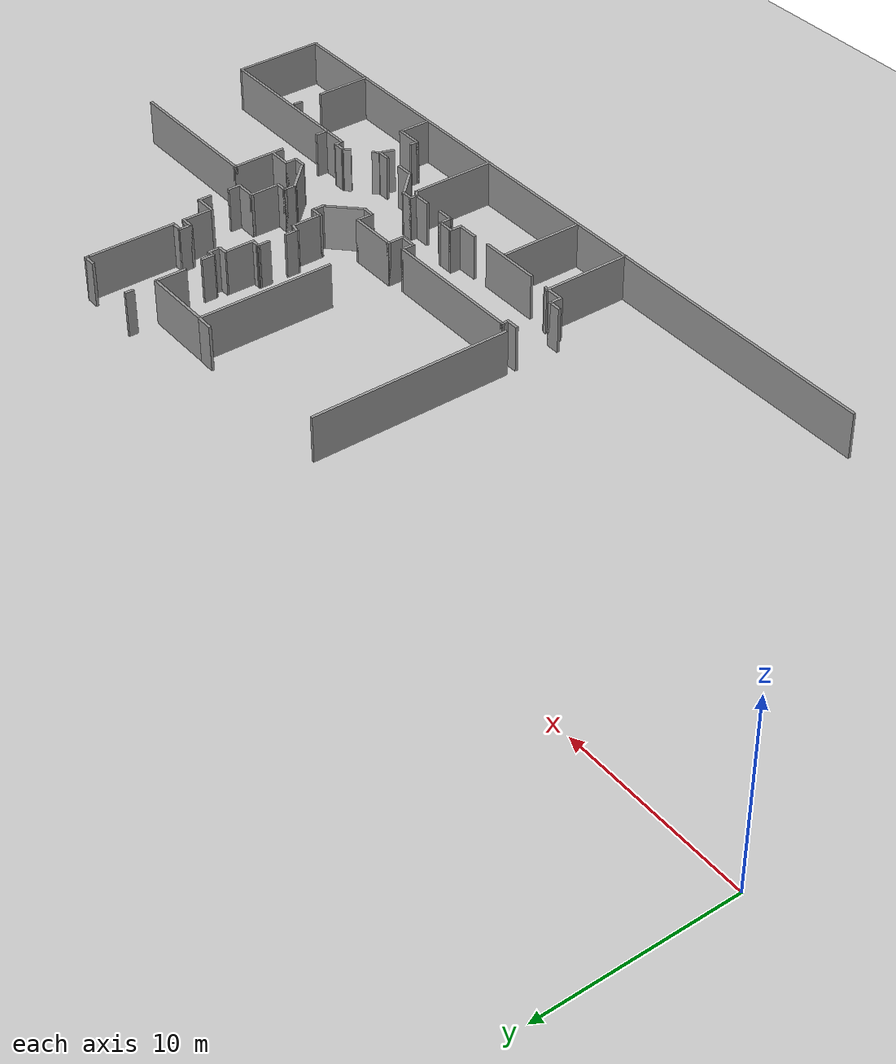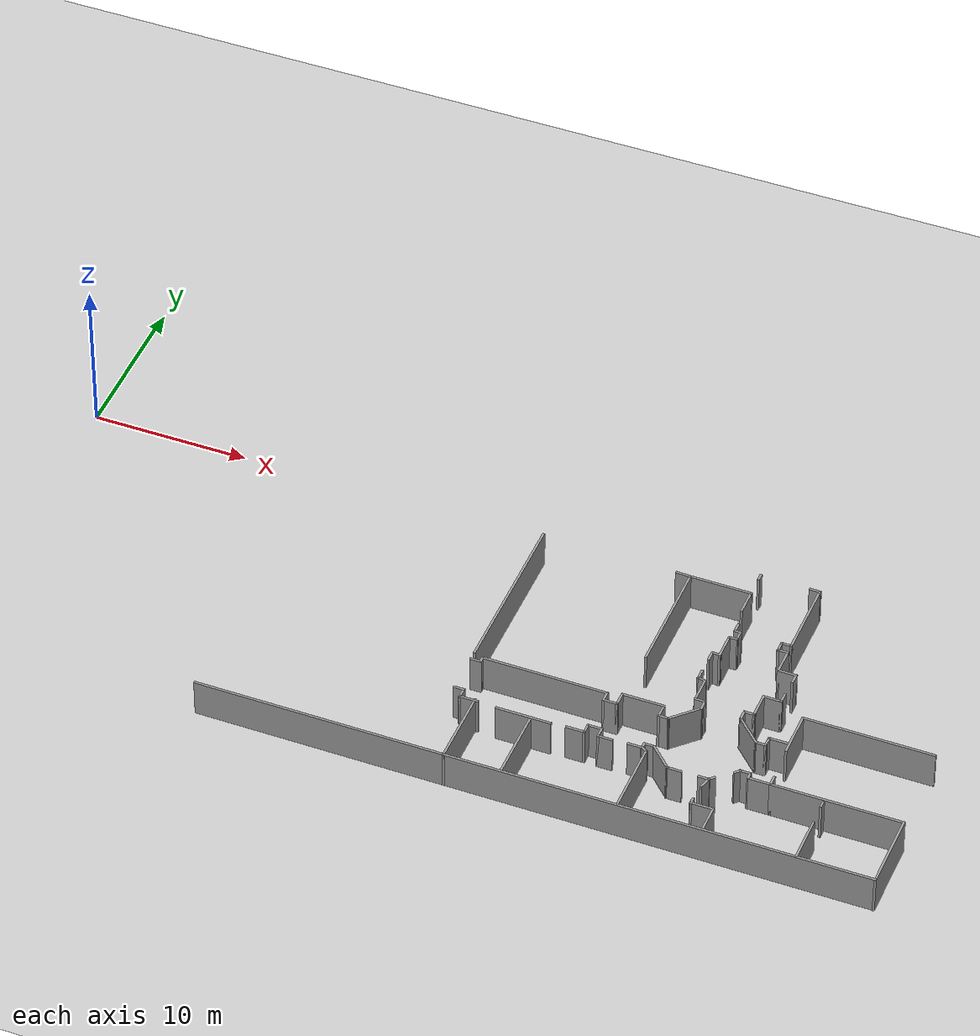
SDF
<sdf version="1.6">
 <world name="default">
  <model name="ground_plane">
   <static>1</static>
   <link name="link">
    <collision name="collision">
     <geometry><plane><normal>0 0 1</normal><size>200 100</size></plane></geometry>
     <surface><friction><ode><mu>100</mu><mu2>50</mu2></ode></friction></surface>
    </collision>
    <visual name="visual">
     <cast_shadows>0</cast_shadows>
     <geometry><plane><normal>0 0 1</normal><size>200 100</size></plane></geometry>
     <material>
      <script><uri>file://media/materials/scripts/gazebo.material</uri><name>Gazebo/Grey</name></script>
     </material>
    </visual>
   </link>
  </model>
  <model name="LuterFloorPlan">
   <pose>-8.27259 7.62647 0 0 -0 0</pose>
   <link name="Wall_1000">
    <collision name="Wall_1000_Collision">
     <geometry><box><size>5 0.15 2.5</size></box></geometry>
     <pose>0 0 1.25 0 -0 0</pose>
    </collision>
    <visual name="Wall_1000_Visual">
     <pose>0 0 1.25 0 -0 0</pose>
     <geometry><box><size>5 0.15 2.5</size></box></geometry>
     <material>
      <script><uri>file://media/materials/scripts/gazebo.material</uri><name>Gazebo/Grey</name></script>
      <ambient>1 1 1 1</ambient>
     </material>
    </visual>
    <pose>66.6595 -26.411 0 0 0 -1.5708</pose>
   </link>
   <link name="Wall_1003">
    <collision name="Wall_1003_Collision">
     <geometry><box><size>0.5 0.15 2.5</size></box></geometry>
     <pose>0 0 1.25 0 -0 0</pose>
    </collision>
    <visual name="Wall_1003_Visual">
     <pose>0 0 1.25 0 -0 0</pose>
     <geometry><box><size>0.5 0.15 2.5</size></box></geometry>
     <material>
      <script><uri>file://media/materials/scripts/gazebo.material</uri><name>Gazebo/Grey</name></script>
      <ambient>1 1 1 1</ambient>
     </material>
    </visual>
    <pose>61.8477 -24.3968 0 0 -0 1.5708</pose>
   </link>
   <link name="Wall_1005">
    <collision name="Wall_1005_Collision">
     <geometry><box><size>3 0.15 2.5</size></box></geometry>
     <pose>0 0 1.25 0 -0 0</pose>
    </collision>
    <visual name="Wall_1005_Visual">
     <pose>0 0 1.25 0 -0 0</pose>
     <geometry><box><size>3 0.15 2.5</size></box></geometry>
     <material>
      <script><uri>file://media/materials/scripts/gazebo.material</uri><name>Gazebo/Grey</name></script>
      <ambient>1 1 1 1</ambient>
     </material>
    </visual>
    <pose>61.8785 -27.343 0 0 -0 1.5708</pose>
   </link>
   <link name="Wall_1007">
    <collision name="Wall_1007_Collision">
     <geometry><box><size>0.75 0.15 2.5</size></box></geometry>
     <pose>0 0 1.25 0 -0 0</pose>
    </collision>
    <visual name="Wall_1007_Visual">
     <pose>0 0 1.25 0 -0 0</pose>
     <geometry><box><size>0.75 0.15 2.5</size></box></geometry>
     <material>
      <script><uri>file://media/materials/scripts/gazebo.material</uri><name>Gazebo/Grey</name></script>
      <ambient>1 1 1 1</ambient>
     </material>
    </visual>
    <pose>51.6413 -17.1025 0 0 0 -1.5708</pose>
   </link>
   <link name="Wall_1008">
    <collision name="Wall_1008_Collision">
     <geometry><box><size>0.619398 0.15 2.5</size></box></geometry>
     <pose>0 0 1.25 0 -0 0</pose>
    </collision>
    <visual name="Wall_1008_Visual">
     <pose>0 0 1.25 0 -0 0</pose>
     <geometry><box><size>0.619398 0.15 2.5</size></box></geometry>
     <material>
      <script><uri>file://media/materials/scripts/gazebo.material</uri><name>Gazebo/Grey</name></script>
      <ambient>1 1 1 1</ambient>
     </material>
    </visual>
    <pose>51.8689 -17.46 0 0 0 -0.24752</pose>
   </link>
   <link name="Wall_1010">
    <collision name="Wall_1010_Collision">
     <geometry><box><size>0.75 0.15 2.5</size></box></geometry>
     <pose>0 0 1.25 0 -0 0</pose>
    </collision>
    <visual name="Wall_1010_Visual">
     <pose>0 0 1.25 0 -0 0</pose>
     <geometry><box><size>0.75 0.15 2.5</size></box></geometry>
     <material>
      <script><uri>file://media/materials/scripts/gazebo.material</uri><name>Gazebo/Grey</name></script>
      <ambient>1 1 1 1</ambient>
     </material>
    </visual>
    <pose>51.6589 -15.4471 0 0 -0 1.5708</pose>
   </link>
   <link name="Wall_1011">
    <collision name="Wall_1011_Collision">
     <geometry><box><size>0.624432 0.15 2.5</size></box></geometry>
     <pose>0 0 1.25 0 -0 0</pose>
    </collision>
    <visual name="Wall_1011_Visual">
     <pose>0 0 1.25 0 -0 0</pose>
     <geometry><box><size>0.624432 0.15 2.5</size></box></geometry>
     <material>
      <script><uri>file://media/materials/scripts/gazebo.material</uri><name>Gazebo/Grey</name></script>
      <ambient>1 1 1 1</ambient>
     </material>
    </visual>
    <pose>51.8955 -15.1559 0 0 0 -0.03716</pose>
   </link>
   <link name="Wall_1012">
    <collision name="Wall_1012_Collision">
     <geometry><box><size>1.75 0.15 2.5</size></box></geometry>
     <pose>0 0 1.25 0 -0 0</pose>
    </collision>
    <visual name="Wall_1012_Visual">
     <pose>0 0 1.25 0 -0 0</pose>
     <geometry><box><size>1.75 0.15 2.5</size></box></geometry>
     <material>
      <script><uri>file://media/materials/scripts/gazebo.material</uri><name>Gazebo/Grey</name></script>
      <ambient>1 1 1 1</ambient>
     </material>
    </visual>
    <pose>52.132 -14.3823 0 0 -0 1.5708</pose>
   </link>
   <link name="Wall_1013">
    <collision name="Wall_1013_Collision">
     <geometry><box><size>0.62817 0.15 2.5</size></box></geometry>
     <pose>0 0 1.25 0 -0 0</pose>
    </collision>
    <visual name="Wall_1013_Visual">
     <pose>0 0 1.25 0 -0 0</pose>
     <geometry><box><size>0.62817 0.15 2.5</size></box></geometry>
     <material>
      <script><uri>file://media/materials/scripts/gazebo.material</uri><name>Gazebo/Grey</name></script>
      <ambient>1 1 1 1</ambient>
     </material>
    </visual>
    <pose>52.3705 -13.5559 0 0 -0 0.036868</pose>
   </link>
   <link name="Wall_1014">
    <collision name="Wall_1014_Collision">
     <geometry><box><size>0.75 0.15 2.5</size></box></geometry>
     <pose>0 0 1.25 0 -0 0</pose>
    </collision>
    <visual name="Wall_1014_Visual">
     <pose>0 0 1.25 0 -0 0</pose>
     <geometry><box><size>0.75 0.15 2.5</size></box></geometry>
     <material>
      <script><uri>file://media/materials/scripts/gazebo.material</uri><name>Gazebo/Grey</name></script>
      <ambient>1 1 1 1</ambient>
     </material>
    </visual>
    <pose>52.6089 -13.2471 0 0 -0 1.5708</pose>
   </link>
   <link name="Wall_1015">
    <collision name="Wall_1015_Collision">
     <geometry><box><size>0.5 0.15 2.5</size></box></geometry>
     <pose>0 0 1.25 0 -0 0</pose>
    </collision>
    <visual name="Wall_1015_Visual">
     <pose>0 0 1.25 0 -0 0</pose>
     <geometry><box><size>0.5 0.15 2.5</size></box></geometry>
     <material>
      <script><uri>file://media/materials/scripts/gazebo.material</uri><name>Gazebo/Grey</name></script>
      <ambient>1 1 1 1</ambient>
     </material>
    </visual>
    <pose>52.4339 -12.9471 0 0 -0 3.14159</pose>
   </link>
   <link name="Wall_1016">
    <collision name="Wall_1016_Collision">
     <geometry><box><size>0.75 0.15 2.5</size></box></geometry>
     <pose>0 0 1.25 0 -0 0</pose>
    </collision>
    <visual name="Wall_1016_Visual">
     <pose>0 0 1.25 0 -0 0</pose>
     <geometry><box><size>0.75 0.15 2.5</size></box></geometry>
     <material>
      <script><uri>file://media/materials/scripts/gazebo.material</uri><name>Gazebo/Grey</name></script>
      <ambient>1 1 1 1</ambient>
     </material>
    </visual>
    <pose>52.2589 -12.6471 0 0 -0 1.5708</pose>
   </link>
   <link name="Wall_1018">
    <collision name="Wall_1018_Collision">
     <geometry><box><size>7.5 0.15 2.5</size></box></geometry>
     <pose>0 0 1.25 0 -0 0</pose>
    </collision>
    <visual name="Wall_1018_Visual">
     <pose>0 0 1.25 0 -0 0</pose>
     <geometry><box><size>7.5 0.15 2.5</size></box></geometry>
     <material>
      <script><uri>file://media/materials/scripts/gazebo.material</uri><name>Gazebo/Grey</name></script>
      <ambient>1 1 1 1</ambient>
     </material>
    </visual>
    <pose>48.1762 -13.2682 0 0 -0 1.5708</pose>
   </link>
   <link name="Wall_1019">
    <collision name="Wall_1019_Collision">
     <geometry><box><size>4 0.15 2.5</size></box></geometry>
     <pose>0 0 1.25 0 -0 0</pose>
    </collision>
    <visual name="Wall_1019_Visual">
     <pose>0 0 1.25 0 -0 0</pose>
     <geometry><box><size>4 0.15 2.5</size></box></geometry>
     <material>
      <script><uri>file://media/materials/scripts/gazebo.material</uri><name>Gazebo/Grey</name></script>
      <ambient>1 1 1 1</ambient>
     </material>
    </visual>
    <pose>50.1012 -9.59318 0 0 -0 0</pose>
   </link>
   <link name="Wall_1020">
    <collision name="Wall_1020_Collision">
     <geometry><box><size>1.75 0.15 2.5</size></box></geometry>
     <pose>0 0 1.25 0 -0 0</pose>
    </collision>
    <visual name="Wall_1020_Visual">
     <pose>0 0 1.25 0 -0 0</pose>
     <geometry><box><size>1.75 0.15 2.5</size></box></geometry>
     <material>
      <script><uri>file://media/materials/scripts/gazebo.material</uri><name>Gazebo/Grey</name></script>
      <ambient>1 1 1 1</ambient>
     </material>
    </visual>
    <pose>52.0262 -10.3932 0 0 0 -1.5708</pose>
   </link>
   <link name="Wall_1022">
    <collision name="Wall_1022_Collision">
     <geometry><box><size>1.02593 0.15 2.5</size></box></geometry>
     <pose>0 0 1.25 0 -0 0</pose>
    </collision>
    <visual name="Wall_1022_Visual">
     <pose>0 0 1.25 0 -0 0</pose>
     <geometry><box><size>1.02593 0.15 2.5</size></box></geometry>
     <material>
      <script><uri>file://media/materials/scripts/gazebo.material</uri><name>Gazebo/Grey</name></script>
      <ambient>1 1 1 1</ambient>
     </material>
    </visual>
    <pose>47.7385 -9.57923 0 0 -0 3.10974</pose>
   </link>
   <link name="Wall_1035">
    <collision name="Wall_1035_Collision">
     <geometry><box><size>3 0.15 2.5</size></box></geometry>
     <pose>0 0 1.25 0 -0 0</pose>
    </collision>
    <visual name="Wall_1035_Visual">
     <pose>0 0 1.25 0 -0 0</pose>
     <geometry><box><size>3 0.15 2.5</size></box></geometry>
     <material>
      <script><uri>file://media/materials/scripts/gazebo.material</uri><name>Gazebo/Grey</name></script>
      <ambient>1 1 1 1</ambient>
     </material>
    </visual>
    <pose>58.4478 -19.6647 0 0 -0 1.5708</pose>
   </link>
   <link name="Wall_1036">
    <collision name="Wall_1036_Collision">
     <geometry><box><size>8.25 0.15 2.5</size></box></geometry>
     <pose>0 0 1.25 0 -0 0</pose>
    </collision>
    <visual name="Wall_1036_Visual">
     <pose>0 0 1.25 0 -0 0</pose>
     <geometry><box><size>8.25 0.15 2.5</size></box></geometry>
     <material>
      <script><uri>file://media/materials/scripts/gazebo.material</uri><name>Gazebo/Grey</name></script>
      <ambient>1 1 1 1</ambient>
     </material>
    </visual>
    <pose>62.4978 -18.2397 0 0 -0 0</pose>
   </link>
   <link name="Wall_1038">
    <collision name="Wall_1038_Collision">
     <geometry><box><size>0.75 0.15 2.5</size></box></geometry>
     <pose>0 0 1.25 0 -0 0</pose>
    </collision>
    <visual name="Wall_1038_Visual">
     <pose>0 0 1.25 0 -0 0</pose>
     <geometry><box><size>0.75 0.15 2.5</size></box></geometry>
     <material>
      <script><uri>file://media/materials/scripts/gazebo.material</uri><name>Gazebo/Grey</name></script>
      <ambient>1 1 1 1</ambient>
     </material>
    </visual>
    <pose>56.816 -17.1362 0 0 0 -1.5708</pose>
   </link>
   <link name="Wall_1039">
    <collision name="Wall_1039_Collision">
     <geometry><box><size>1.25 0.15 2.5</size></box></geometry>
     <pose>0 0 1.25 0 -0 0</pose>
    </collision>
    <visual name="Wall_1039_Visual">
     <pose>0 0 1.25 0 -0 0</pose>
     <geometry><box><size>1.25 0.15 2.5</size></box></geometry>
     <material>
      <script><uri>file://media/materials/scripts/gazebo.material</uri><name>Gazebo/Grey</name></script>
      <ambient>1 1 1 1</ambient>
     </material>
    </visual>
    <pose>56.266 -17.4362 0 0 -0 3.14159</pose>
   </link>
   <link name="Wall_1040">
    <collision name="Wall_1040_Collision">
     <geometry><box><size>1.75 0.15 2.5</size></box></geometry>
     <pose>0 0 1.25 0 -0 0</pose>
    </collision>
    <visual name="Wall_1040_Visual">
     <pose>0 0 1.25 0 -0 0</pose>
     <geometry><box><size>1.75 0.15 2.5</size></box></geometry>
     <material>
      <script><uri>file://media/materials/scripts/gazebo.material</uri><name>Gazebo/Grey</name></script>
      <ambient>1 1 1 1</ambient>
     </material>
    </visual>
    <pose>55.716 -18.2362 0 0 0 -1.5708</pose>
   </link>
   <link name="Wall_1041">
    <collision name="Wall_1041_Collision">
     <geometry><box><size>0.75 0.15 2.5</size></box></geometry>
     <pose>0 0 1.25 0 -0 0</pose>
    </collision>
    <visual name="Wall_1041_Visual">
     <pose>0 0 1.25 0 -0 0</pose>
     <geometry><box><size>0.75 0.15 2.5</size></box></geometry>
     <material>
      <script><uri>file://media/materials/scripts/gazebo.material</uri><name>Gazebo/Grey</name></script>
      <ambient>1 1 1 1</ambient>
     </material>
    </visual>
    <pose>55.416 -19.0362 0 0 -0 3.14159</pose>
   </link>
   <link name="Wall_1042">
    <collision name="Wall_1042_Collision">
     <geometry><box><size>0.75 0.15 2.5</size></box></geometry>
     <pose>0 0 1.25 0 -0 0</pose>
    </collision>
    <visual name="Wall_1042_Visual">
     <pose>0 0 1.25 0 -0 0</pose>
     <geometry><box><size>0.75 0.15 2.5</size></box></geometry>
     <material>
      <script><uri>file://media/materials/scripts/gazebo.material</uri><name>Gazebo/Grey</name></script>
      <ambient>1 1 1 1</ambient>
     </material>
    </visual>
    <pose>55.116 -19.3362 0 0 0 -1.5708</pose>
   </link>
   <link name="Wall_1043">
    <collision name="Wall_1043_Collision">
     <geometry><box><size>2.25 0.15 2.5</size></box></geometry>
     <pose>0 0 1.25 0 -0 0</pose>
    </collision>
    <visual name="Wall_1043_Visual">
     <pose>0 0 1.25 0 -0 0</pose>
     <geometry><box><size>2.25 0.15 2.5</size></box></geometry>
     <material>
      <script><uri>file://media/materials/scripts/gazebo.material</uri><name>Gazebo/Grey</name></script>
      <ambient>1 1 1 1</ambient>
     </material>
    </visual>
    <pose>55.8585 -20.3787 0 0 0 -0.785398</pose>
   </link>
   <link name="Wall_1044">
    <collision name="Wall_1044_Collision">
     <geometry><box><size>0.75 0.15 2.5</size></box></geometry>
     <pose>0 0 1.25 0 -0 0</pose>
    </collision>
    <visual name="Wall_1044_Visual">
     <pose>0 0 1.25 0 -0 0</pose>
     <geometry><box><size>0.75 0.15 2.5</size></box></geometry>
     <material>
      <script><uri>file://media/materials/scripts/gazebo.material</uri><name>Gazebo/Grey</name></script>
      <ambient>1 1 1 1</ambient>
     </material>
    </visual>
    <pose>56.9009 -21.1212 0 0 -0 0</pose>
   </link>
   <link name="Wall_1045">
    <collision name="Wall_1045_Collision">
     <geometry><box><size>0.75 0.15 2.5</size></box></geometry>
     <pose>0 0 1.25 0 -0 0</pose>
    </collision>
    <visual name="Wall_1045_Visual">
     <pose>0 0 1.25 0 -0 0</pose>
     <geometry><box><size>0.75 0.15 2.5</size></box></geometry>
     <material>
      <script><uri>file://media/materials/scripts/gazebo.material</uri><name>Gazebo/Grey</name></script>
      <ambient>1 1 1 1</ambient>
     </material>
    </visual>
    <pose>57.2009 -20.8212 0 0 -0 1.5708</pose>
   </link>
   <link name="Wall_1046">
    <collision name="Wall_1046_Collision">
     <geometry><box><size>1.25 0.15 2.5</size></box></geometry>
     <pose>0 0 1.25 0 -0 0</pose>
    </collision>
    <visual name="Wall_1046_Visual">
     <pose>0 0 1.25 0 -0 0</pose>
     <geometry><box><size>1.25 0.15 2.5</size></box></geometry>
     <material>
      <script><uri>file://media/materials/scripts/gazebo.material</uri><name>Gazebo/Grey</name></script>
      <ambient>1 1 1 1</ambient>
     </material>
    </visual>
    <pose>57.7509 -20.5212 0 0 -0 0</pose>
   </link>
   <link name="Wall_1048">
    <collision name="Wall_1048_Collision">
     <geometry><box><size>0.75 0.15 2.5</size></box></geometry>
     <pose>0 0 1.25 0 -0 0</pose>
    </collision>
    <visual name="Wall_1048_Visual">
     <pose>0 0 1.25 0 -0 0</pose>
     <geometry><box><size>0.75 0.15 2.5</size></box></geometry>
     <material>
      <script><uri>file://media/materials/scripts/gazebo.material</uri><name>Gazebo/Grey</name></script>
      <ambient>1 1 1 1</ambient>
     </material>
    </visual>
    <pose>56.8695 -15.3859 0 0 -0 1.5708</pose>
   </link>
   <link name="Wall_1049">
    <collision name="Wall_1049_Collision">
     <geometry><box><size>1.25 0.15 2.5</size></box></geometry>
     <pose>0 0 1.25 0 -0 0</pose>
    </collision>
    <visual name="Wall_1049_Visual">
     <pose>0 0 1.25 0 -0 0</pose>
     <geometry><box><size>1.25 0.15 2.5</size></box></geometry>
     <material>
      <script><uri>file://media/materials/scripts/gazebo.material</uri><name>Gazebo/Grey</name></script>
      <ambient>1 1 1 1</ambient>
     </material>
    </visual>
    <pose>56.3195 -15.0859 0 0 -0 3.14159</pose>
   </link>
   <link name="Wall_1050">
    <collision name="Wall_1050_Collision">
     <geometry><box><size>1.75 0.15 2.5</size></box></geometry>
     <pose>0 0 1.25 0 -0 0</pose>
    </collision>
    <visual name="Wall_1050_Visual">
     <pose>0 0 1.25 0 -0 0</pose>
     <geometry><box><size>1.75 0.15 2.5</size></box></geometry>
     <material>
      <script><uri>file://media/materials/scripts/gazebo.material</uri><name>Gazebo/Grey</name></script>
      <ambient>1 1 1 1</ambient>
     </material>
    </visual>
    <pose>55.7695 -14.2859 0 0 -0 1.5708</pose>
   </link>
   <link name="Wall_1051">
    <collision name="Wall_1051_Collision">
     <geometry><box><size>0.75 0.15 2.5</size></box></geometry>
     <pose>0 0 1.25 0 -0 0</pose>
    </collision>
    <visual name="Wall_1051_Visual">
     <pose>0 0 1.25 0 -0 0</pose>
     <geometry><box><size>0.75 0.15 2.5</size></box></geometry>
     <material>
      <script><uri>file://media/materials/scripts/gazebo.material</uri><name>Gazebo/Grey</name></script>
      <ambient>1 1 1 1</ambient>
     </material>
    </visual>
    <pose>55.4695 -13.4859 0 0 -0 3.14159</pose>
   </link>
   <link name="Wall_1052">
    <collision name="Wall_1052_Collision">
     <geometry><box><size>0.75 0.15 2.5</size></box></geometry>
     <pose>0 0 1.25 0 -0 0</pose>
    </collision>
    <visual name="Wall_1052_Visual">
     <pose>0 0 1.25 0 -0 0</pose>
     <geometry><box><size>0.75 0.15 2.5</size></box></geometry>
     <material>
      <script><uri>file://media/materials/scripts/gazebo.material</uri><name>Gazebo/Grey</name></script>
      <ambient>1 1 1 1</ambient>
     </material>
    </visual>
    <pose>55.1695 -13.1859 0 0 -0 1.5708</pose>
   </link>
   <link name="Wall_1053">
    <collision name="Wall_1053_Collision">
     <geometry><box><size>0.75 0.15 2.5</size></box></geometry>
     <pose>0 0 1.25 0 -0 0</pose>
    </collision>
    <visual name="Wall_1053_Visual">
     <pose>0 0 1.25 0 -0 0</pose>
     <geometry><box><size>0.75 0.15 2.5</size></box></geometry>
     <material>
      <script><uri>file://media/materials/scripts/gazebo.material</uri><name>Gazebo/Grey</name></script>
      <ambient>1 1 1 1</ambient>
     </material>
    </visual>
    <pose>55.4695 -12.8859 0 0 -0 0</pose>
   </link>
   <link name="Wall_1054">
    <collision name="Wall_1054_Collision">
     <geometry><box><size>5 0.15 2.5</size></box></geometry>
     <pose>0 0 1.25 0 -0 0</pose>
    </collision>
    <visual name="Wall_1054_Visual">
     <pose>0 0 1.25 0 -0 0</pose>
     <geometry><box><size>5 0.15 2.5</size></box></geometry>
     <material>
      <script><uri>file://media/materials/scripts/gazebo.material</uri><name>Gazebo/Grey</name></script>
      <ambient>1 1 1 1</ambient>
     </material>
    </visual>
    <pose>55.7695 -10.4609 0 0 -0 1.5708</pose>
   </link>
   <link name="Wall_1055">
    <collision name="Wall_1055_Collision">
     <geometry><box><size>0.25 0.15 2.5</size></box></geometry>
     <pose>0 0 1.25 0 -0 0</pose>
    </collision>
    <visual name="Wall_1055_Visual">
     <pose>0 0 1.25 0 -0 0</pose>
     <geometry><box><size>0.25 0.15 2.5</size></box></geometry>
     <material>
      <script><uri>file://media/materials/scripts/gazebo.material</uri><name>Gazebo/Grey</name></script>
      <ambient>1 1 1 1</ambient>
     </material>
    </visual>
    <pose>55.7695 -7.98593 0 0 -0 1.5708</pose>
   </link>
   <link name="Wall_1056">
    <collision name="Wall_1056_Collision">
     <geometry><box><size>0.75 0.15 2.5</size></box></geometry>
     <pose>0 0 1.25 0 -0 0</pose>
    </collision>
    <visual name="Wall_1056_Visual">
     <pose>0 0 1.25 0 -0 0</pose>
     <geometry><box><size>0.75 0.15 2.5</size></box></geometry>
     <material>
      <script><uri>file://media/materials/scripts/gazebo.material</uri><name>Gazebo/Grey</name></script>
      <ambient>1 1 1 1</ambient>
     </material>
    </visual>
    <pose>55.4695 -7.93593 0 0 -0 3.14159</pose>
   </link>
   <link name="Wall_1061">
    <collision name="Wall_1061_Collision">
     <geometry><box><size>0.5 0.15 2.5</size></box></geometry>
     <pose>0 0 1.25 0 -0 0</pose>
    </collision>
    <visual name="Wall_1061_Visual">
     <pose>0 0 1.25 0 -0 0</pose>
     <geometry><box><size>0.5 0.15 2.5</size></box></geometry>
     <material>
      <script><uri>file://media/materials/scripts/gazebo.material</uri><name>Gazebo/Grey</name></script>
      <ambient>1 1 1 1</ambient>
     </material>
    </visual>
    <pose>52.0275 -8.10084 0 0 -0 1.5708</pose>
   </link>
   <link name="Wall_899">
    <collision name="Wall_899_Collision">
     <geometry><box><size>42.25 0.15 2.5</size></box></geometry>
     <pose>0 0 1.25 0 -0 0</pose>
    </collision>
    <visual name="Wall_899_Visual">
     <pose>0 0 1.25 0 -0 0</pose>
     <geometry><box><size>42.25 0.15 2.5</size></box></geometry>
     <material>
      <script><uri>file://media/materials/scripts/gazebo.material</uri><name>Gazebo/Grey</name></script>
      <ambient>1 1 1 1</ambient>
     </material>
    </visual>
    <pose>45.5598 -28.8154 0 0 -0 0</pose>
   </link>
   <link name="Wall_937">
    <collision name="Wall_937_Collision">
     <geometry><box><size>0.75 0.15 2.5</size></box></geometry>
     <pose>0 0 1.25 0 -0 0</pose>
    </collision>
    <visual name="Wall_937_Visual">
     <pose>0 0 1.25 0 -0 0</pose>
     <geometry><box><size>0.75 0.15 2.5</size></box></geometry>
     <material>
      <script><uri>file://media/materials/scripts/gazebo.material</uri><name>Gazebo/Grey</name></script>
      <ambient>1 1 1 1</ambient>
     </material>
    </visual>
    <pose>38.9894 -23.4706 0 0 -0 0</pose>
   </link>
   <link name="Wall_938">
    <collision name="Wall_938_Collision">
     <geometry><box><size>0.75 0.15 2.5</size></box></geometry>
     <pose>0 0 1.25 0 -0 0</pose>
    </collision>
    <visual name="Wall_938_Visual">
     <pose>0 0 1.25 0 -0 0</pose>
     <geometry><box><size>0.75 0.15 2.5</size></box></geometry>
     <material>
      <script><uri>file://media/materials/scripts/gazebo.material</uri><name>Gazebo/Grey</name></script>
      <ambient>1 1 1 1</ambient>
     </material>
    </visual>
    <pose>39.2894 -23.7706 0 0 0 -1.5708</pose>
   </link>
   <link name="Wall_939">
    <collision name="Wall_939_Collision">
     <geometry><box><size>1.25 0.15 2.5</size></box></geometry>
     <pose>0 0 1.25 0 -0 0</pose>
    </collision>
    <visual name="Wall_939_Visual">
     <pose>0 0 1.25 0 -0 0</pose>
     <geometry><box><size>1.25 0.15 2.5</size></box></geometry>
     <material>
      <script><uri>file://media/materials/scripts/gazebo.material</uri><name>Gazebo/Grey</name></script>
      <ambient>1 1 1 1</ambient>
     </material>
    </visual>
    <pose>39.8394 -24.0706 0 0 -0 0</pose>
   </link>
   <link name="Wall_941">
    <collision name="Wall_941_Collision">
     <geometry><box><size>5 0.15 2.5</size></box></geometry>
     <pose>0 0 1.25 0 -0 0</pose>
    </collision>
    <visual name="Wall_941_Visual">
     <pose>0 0 1.25 0 -0 0</pose>
     <geometry><box><size>5 0.15 2.5</size></box></geometry>
     <material>
      <script><uri>file://media/materials/scripts/gazebo.material</uri><name>Gazebo/Grey</name></script>
      <ambient>1 1 1 1</ambient>
     </material>
    </visual>
    <pose>40.2174 -26.407 0 0 -0 1.5708</pose>
   </link>
   <link name="Wall_944">
    <collision name="Wall_944_Collision">
     <geometry><box><size>11 0.15 2.5</size></box></geometry>
     <pose>0 0 1.25 0 -0 0</pose>
    </collision>
    <visual name="Wall_944_Visual">
     <pose>0 0 1.25 0 -0 0</pose>
     <geometry><box><size>11 0.15 2.5</size></box></geometry>
     <material>
      <script><uri>file://media/materials/scripts/gazebo.material</uri><name>Gazebo/Grey</name></script>
      <ambient>1 1 1 1</ambient>
     </material>
    </visual>
    <pose>38.7115 -14.9274 0 0 0 -1.5708</pose>
   </link>
   <link name="Wall_948">
    <collision name="Wall_948_Collision">
     <geometry><box><size>0.75 0.15 2.5</size></box></geometry>
     <pose>0 0 1.25 0 -0 0</pose>
    </collision>
    <visual name="Wall_948_Visual">
     <pose>0 0 1.25 0 -0 0</pose>
     <geometry><box><size>0.75 0.15 2.5</size></box></geometry>
     <material>
      <script><uri>file://media/materials/scripts/gazebo.material</uri><name>Gazebo/Grey</name></script>
      <ambient>1 1 1 1</ambient>
     </material>
    </visual>
    <pose>39.0115 -20.9524 0 0 -0 0</pose>
   </link>
   <link name="Wall_949">
    <collision name="Wall_949_Collision">
     <geometry><box><size>0.5 0.15 2.5</size></box></geometry>
     <pose>0 0 1.25 0 -0 0</pose>
    </collision>
    <visual name="Wall_949_Visual">
     <pose>0 0 1.25 0 -0 0</pose>
     <geometry><box><size>0.5 0.15 2.5</size></box></geometry>
     <material>
      <script><uri>file://media/materials/scripts/gazebo.material</uri><name>Gazebo/Grey</name></script>
      <ambient>1 1 1 1</ambient>
     </material>
    </visual>
    <pose>39.3115 -20.7774 0 0 -0 1.5708</pose>
   </link>
   <link name="Wall_950">
    <collision name="Wall_950_Collision">
     <geometry><box><size>8 0.15 2.5</size></box></geometry>
     <pose>0 0 1.25 0 -0 0</pose>
    </collision>
    <visual name="Wall_950_Visual">
     <pose>0 0 1.25 0 -0 0</pose>
     <geometry><box><size>8 0.15 2.5</size></box></geometry>
     <material>
      <script><uri>file://media/materials/scripts/gazebo.material</uri><name>Gazebo/Grey</name></script>
      <ambient>1 1 1 1</ambient>
     </material>
    </visual>
    <pose>43.2365 -20.6024 0 0 -0 0</pose>
   </link>
   <link name="Wall_951">
    <collision name="Wall_951_Collision">
     <geometry><box><size>0.75 0.15 2.5</size></box></geometry>
     <pose>0 0 1.25 0 -0 0</pose>
    </collision>
    <visual name="Wall_951_Visual">
     <pose>0 0 1.25 0 -0 0</pose>
     <geometry><box><size>0.75 0.15 2.5</size></box></geometry>
     <material>
      <script><uri>file://media/materials/scripts/gazebo.material</uri><name>Gazebo/Grey</name></script>
      <ambient>1 1 1 1</ambient>
     </material>
    </visual>
    <pose>47.1615 -20.9024 0 0 0 -1.5708</pose>
   </link>
   <link name="Wall_952">
    <collision name="Wall_952_Collision">
     <geometry><box><size>1 0.15 2.5</size></box></geometry>
     <pose>0 0 1.25 0 -0 0</pose>
    </collision>
    <visual name="Wall_952_Visual">
     <pose>0 0 1.25 0 -0 0</pose>
     <geometry><box><size>1 0.15 2.5</size></box></geometry>
     <material>
      <script><uri>file://media/materials/scripts/gazebo.material</uri><name>Gazebo/Grey</name></script>
      <ambient>1 1 1 1</ambient>
     </material>
    </visual>
    <pose>47.5865 -21.2024 0 0 -0 0</pose>
   </link>
   <link name="Wall_953">
    <collision name="Wall_953_Collision">
     <geometry><box><size>1 0.15 2.5</size></box></geometry>
     <pose>0 0 1.25 0 -0 0</pose>
    </collision>
    <visual name="Wall_953_Visual">
     <pose>0 0 1.25 0 -0 0</pose>
     <geometry><box><size>1 0.15 2.5</size></box></geometry>
     <material>
      <script><uri>file://media/materials/scripts/gazebo.material</uri><name>Gazebo/Grey</name></script>
      <ambient>1 1 1 1</ambient>
     </material>
    </visual>
    <pose>48.0115 -20.7774 0 0 -0 1.5708</pose>
   </link>
   <link name="Wall_954">
    <collision name="Wall_954_Collision">
     <geometry><box><size>2.75 0.15 2.5</size></box></geometry>
     <pose>0 0 1.25 0 -0 0</pose>
    </collision>
    <visual name="Wall_954_Visual">
     <pose>0 0 1.25 0 -0 0</pose>
     <geometry><box><size>2.75 0.15 2.5</size></box></geometry>
     <material>
      <script><uri>file://media/materials/scripts/gazebo.material</uri><name>Gazebo/Grey</name></script>
      <ambient>1 1 1 1</ambient>
     </material>
    </visual>
    <pose>49.3115 -20.3524 0 0 -0 0</pose>
   </link>
   <link name="Wall_957">
    <collision name="Wall_957_Collision">
     <geometry><box><size>3.5 0.15 2.5</size></box></geometry>
     <pose>0 0 1.25 0 -0 0</pose>
    </collision>
    <visual name="Wall_957_Visual">
     <pose>0 0 1.25 0 -0 0</pose>
     <geometry><box><size>3.5 0.15 2.5</size></box></geometry>
     <material>
      <script><uri>file://media/materials/scripts/gazebo.material</uri><name>Gazebo/Grey</name></script>
      <ambient>1 1 1 1</ambient>
     </material>
    </visual>
    <pose>43.2985 -24.1441 0 0 -0 0</pose>
   </link>
   <link name="Wall_959">
    <collision name="Wall_959_Collision">
     <geometry><box><size>4.5 0.15 2.5</size></box></geometry>
     <pose>0 0 1.25 0 -0 0</pose>
    </collision>
    <visual name="Wall_959_Visual">
     <pose>0 0 1.25 0 -0 0</pose>
     <geometry><box><size>4.5 0.15 2.5</size></box></geometry>
     <material>
      <script><uri>file://media/materials/scripts/gazebo.material</uri><name>Gazebo/Grey</name></script>
      <ambient>1 1 1 1</ambient>
     </material>
    </visual>
    <pose>43.7769 -26.4914 0 0 -0 1.5708</pose>
   </link>
   <link name="Wall_961">
    <collision name="Wall_961_Collision">
     <geometry><box><size>1 0.15 2.5</size></box></geometry>
     <pose>0 0 1.25 0 -0 0</pose>
    </collision>
    <visual name="Wall_961_Visual">
     <pose>0 0 1.25 0 -0 0</pose>
     <geometry><box><size>1 0.15 2.5</size></box></geometry>
     <material>
      <script><uri>file://media/materials/scripts/gazebo.material</uri><name>Gazebo/Grey</name></script>
      <ambient>1 1 1 1</ambient>
     </material>
    </visual>
    <pose>50.6115 -20.7774 0 0 0 -1.5708</pose>
   </link>
   <link name="Wall_962">
    <collision name="Wall_962_Collision">
     <geometry><box><size>0.75 0.15 2.5</size></box></geometry>
     <pose>0 0 1.25 0 -0 0</pose>
    </collision>
    <visual name="Wall_962_Visual">
     <pose>0 0 1.25 0 -0 0</pose>
     <geometry><box><size>0.75 0.15 2.5</size></box></geometry>
     <material>
      <script><uri>file://media/materials/scripts/gazebo.material</uri><name>Gazebo/Grey</name></script>
      <ambient>1 1 1 1</ambient>
     </material>
    </visual>
    <pose>50.9115 -21.2024 0 0 -0 0</pose>
   </link>
   <link name="Wall_963">
    <collision name="Wall_963_Collision">
     <geometry><box><size>2.25 0.15 2.5</size></box></geometry>
     <pose>0 0 1.25 0 -0 0</pose>
    </collision>
    <visual name="Wall_963_Visual">
     <pose>0 0 1.25 0 -0 0</pose>
     <geometry><box><size>2.25 0.15 2.5</size></box></geometry>
     <material>
      <script><uri>file://media/materials/scripts/gazebo.material</uri><name>Gazebo/Grey</name></script>
      <ambient>1 1 1 1</ambient>
     </material>
    </visual>
    <pose>51.954 -20.4599 0 0 -0 0.785398</pose>
   </link>
   <link name="Wall_964">
    <collision name="Wall_964_Collision">
     <geometry><box><size>0.75 0.15 2.5</size></box></geometry>
     <pose>0 0 1.25 0 -0 0</pose>
    </collision>
    <visual name="Wall_964_Visual">
     <pose>0 0 1.25 0 -0 0</pose>
     <geometry><box><size>0.75 0.15 2.5</size></box></geometry>
     <material>
      <script><uri>file://media/materials/scripts/gazebo.material</uri><name>Gazebo/Grey</name></script>
      <ambient>1 1 1 1</ambient>
     </material>
    </visual>
    <pose>52.6964 -19.4175 0 0 -0 1.5708</pose>
   </link>
   <link name="Wall_965">
    <collision name="Wall_965_Collision">
     <geometry><box><size>0.75 0.15 2.5</size></box></geometry>
     <pose>0 0 1.25 0 -0 0</pose>
    </collision>
    <visual name="Wall_965_Visual">
     <pose>0 0 1.25 0 -0 0</pose>
     <geometry><box><size>0.75 0.15 2.5</size></box></geometry>
     <material>
      <script><uri>file://media/materials/scripts/gazebo.material</uri><name>Gazebo/Grey</name></script>
      <ambient>1 1 1 1</ambient>
     </material>
    </visual>
    <pose>52.3964 -19.1175 0 0 -0 3.14159</pose>
   </link>
   <link name="Wall_966">
    <collision name="Wall_966_Collision">
     <geometry><box><size>1.75 0.15 2.5</size></box></geometry>
     <pose>0 0 1.25 0 -0 0</pose>
    </collision>
    <visual name="Wall_966_Visual">
     <pose>0 0 1.25 0 -0 0</pose>
     <geometry><box><size>1.75 0.15 2.5</size></box></geometry>
     <material>
      <script><uri>file://media/materials/scripts/gazebo.material</uri><name>Gazebo/Grey</name></script>
      <ambient>1 1 1 1</ambient>
     </material>
    </visual>
    <pose>52.0964 -18.3175 0 0 -0 1.5708</pose>
   </link>
   <link name="Wall_968">
    <collision name="Wall_968_Collision">
     <geometry><box><size>1.25 0.15 2.5</size></box></geometry>
     <pose>0 0 1.25 0 -0 0</pose>
    </collision>
    <visual name="Wall_968_Visual">
     <pose>0 0 1.25 0 -0 0</pose>
     <geometry><box><size>1.25 0.15 2.5</size></box></geometry>
     <material>
      <script><uri>file://media/materials/scripts/gazebo.material</uri><name>Gazebo/Grey</name></script>
      <ambient>1 1 1 1</ambient>
     </material>
    </visual>
    <pose>46.5401 -24.0654 0 0 -0 0</pose>
   </link>
   <link name="Wall_969">
    <collision name="Wall_969_Collision">
     <geometry><box><size>0.75 0.15 2.5</size></box></geometry>
     <pose>0 0 1.25 0 -0 0</pose>
    </collision>
    <visual name="Wall_969_Visual">
     <pose>0 0 1.25 0 -0 0</pose>
     <geometry><box><size>0.75 0.15 2.5</size></box></geometry>
     <material>
      <script><uri>file://media/materials/scripts/gazebo.material</uri><name>Gazebo/Grey</name></script>
      <ambient>1 1 1 1</ambient>
     </material>
    </visual>
    <pose>47.0901 -23.7654 0 0 -0 1.5708</pose>
   </link>
   <link name="Wall_970">
    <collision name="Wall_970_Collision">
     <geometry><box><size>1 0.15 2.5</size></box></geometry>
     <pose>0 0 1.25 0 -0 0</pose>
    </collision>
    <visual name="Wall_970_Visual">
     <pose>0 0 1.25 0 -0 0</pose>
     <geometry><box><size>1 0.15 2.5</size></box></geometry>
     <material>
      <script><uri>file://media/materials/scripts/gazebo.material</uri><name>Gazebo/Grey</name></script>
      <ambient>1 1 1 1</ambient>
     </material>
    </visual>
    <pose>47.5151 -23.4654 0 0 -0 0</pose>
   </link>
   <link name="Wall_971">
    <collision name="Wall_971_Collision">
     <geometry><box><size>0.75 0.15 2.5</size></box></geometry>
     <pose>0 0 1.25 0 -0 0</pose>
    </collision>
    <visual name="Wall_971_Visual">
     <pose>0 0 1.25 0 -0 0</pose>
     <geometry><box><size>0.75 0.15 2.5</size></box></geometry>
     <material>
      <script><uri>file://media/materials/scripts/gazebo.material</uri><name>Gazebo/Grey</name></script>
      <ambient>1 1 1 1</ambient>
     </material>
    </visual>
    <pose>47.9401 -23.7654 0 0 0 -1.5708</pose>
   </link>
   <link name="Wall_972">
    <collision name="Wall_972_Collision">
     <geometry><box><size>1 0.15 2.5</size></box></geometry>
     <pose>0 0 1.25 0 -0 0</pose>
    </collision>
    <visual name="Wall_972_Visual">
     <pose>0 0 1.25 0 -0 0</pose>
     <geometry><box><size>1 0.15 2.5</size></box></geometry>
     <material>
      <script><uri>file://media/materials/scripts/gazebo.material</uri><name>Gazebo/Grey</name></script>
      <ambient>1 1 1 1</ambient>
     </material>
    </visual>
    <pose>48.3651 -24.0654 0 0 -0 0</pose>
   </link>
   <link name="Wall_974">
    <collision name="Wall_974_Collision">
     <geometry><box><size>1 0.15 2.5</size></box></geometry>
     <pose>0 0 1.25 0 -0 0</pose>
    </collision>
    <visual name="Wall_974_Visual">
     <pose>0 0 1.25 0 -0 0</pose>
     <geometry><box><size>1 0.15 2.5</size></box></geometry>
     <material>
      <script><uri>file://media/materials/scripts/gazebo.material</uri><name>Gazebo/Grey</name></script>
      <ambient>1 1 1 1</ambient>
     </material>
    </visual>
    <pose>50.232 -23.995 0 0 -0 0</pose>
   </link>
   <link name="Wall_975">
    <collision name="Wall_975_Collision">
     <geometry><box><size>0.5 0.15 2.5</size></box></geometry>
     <pose>0 0 1.25 0 -0 0</pose>
    </collision>
    <visual name="Wall_975_Visual">
     <pose>0 0 1.25 0 -0 0</pose>
     <geometry><box><size>0.5 0.15 2.5</size></box></geometry>
     <material>
      <script><uri>file://media/materials/scripts/gazebo.material</uri><name>Gazebo/Grey</name></script>
      <ambient>1 1 1 1</ambient>
     </material>
    </visual>
    <pose>50.657 -23.82 0 0 -0 1.5708</pose>
   </link>
   <link name="Wall_976">
    <collision name="Wall_976_Collision">
     <geometry><box><size>0.75 0.15 2.5</size></box></geometry>
     <pose>0 0 1.25 0 -0 0</pose>
    </collision>
    <visual name="Wall_976_Visual">
     <pose>0 0 1.25 0 -0 0</pose>
     <geometry><box><size>0.75 0.15 2.5</size></box></geometry>
     <material>
      <script><uri>file://media/materials/scripts/gazebo.material</uri><name>Gazebo/Grey</name></script>
      <ambient>1 1 1 1</ambient>
     </material>
    </visual>
    <pose>50.957 -23.645 0 0 -0 0</pose>
   </link>
   <link name="Wall_977">
    <collision name="Wall_977_Collision">
     <geometry><box><size>2 0.15 2.5</size></box></geometry>
     <pose>0 0 1.25 0 -0 0</pose>
    </collision>
    <visual name="Wall_977_Visual">
     <pose>0 0 1.25 0 -0 0</pose>
     <geometry><box><size>2 0.15 2.5</size></box></geometry>
     <material>
      <script><uri>file://media/materials/scripts/gazebo.material</uri><name>Gazebo/Grey</name></script>
      <ambient>1 1 1 1</ambient>
     </material>
    </visual>
    <pose>51.9111 -24.2991 0 0 0 -0.785398</pose>
   </link>
   <link name="Wall_978">
    <collision name="Wall_978_Collision">
     <geometry><box><size>1 0.15 2.5</size></box></geometry>
     <pose>0 0 1.25 0 -0 0</pose>
    </collision>
    <visual name="Wall_978_Visual">
     <pose>0 0 1.25 0 -0 0</pose>
     <geometry><box><size>1 0.15 2.5</size></box></geometry>
     <material>
      <script><uri>file://media/materials/scripts/gazebo.material</uri><name>Gazebo/Grey</name></script>
      <ambient>1 1 1 1</ambient>
     </material>
    </visual>
    <pose>52.9902 -24.9531 0 0 -0 0</pose>
   </link>
   <link name="Wall_980">
    <collision name="Wall_980_Collision">
     <geometry><box><size>4.75 0.15 2.5</size></box></geometry>
     <pose>0 0 1.25 0 -0 0</pose>
    </collision>
    <visual name="Wall_980_Visual">
     <pose>0 0 1.25 0 -0 0</pose>
     <geometry><box><size>4.75 0.15 2.5</size></box></geometry>
     <material>
      <script><uri>file://media/materials/scripts/gazebo.material</uri><name>Gazebo/Grey</name></script>
      <ambient>1 1 1 1</ambient>
     </material>
    </visual>
    <pose>50.9679 -26.4969 0 0 -0 1.5708</pose>
   </link>
   <link name="Wall_981">
    <collision name="Wall_981_Collision">
     <geometry><box><size>0.520705 0.15 2.5</size></box></geometry>
     <pose>0 0 1.25 0 -0 0</pose>
    </collision>
    <visual name="Wall_981_Visual">
     <pose>0 0 1.25 0 -0 0</pose>
     <geometry><box><size>0.520705 0.15 2.5</size></box></geometry>
     <material>
      <script><uri>file://media/materials/scripts/gazebo.material</uri><name>Gazebo/Grey</name></script>
      <ambient>1 1 1 1</ambient>
     </material>
    </visual>
    <pose>50.8125 -24.0959 0 0 -0 2.56563</pose>
   </link>
   <link name="Wall_983">
    <collision name="Wall_983_Collision">
     <geometry><box><size>0.75 0.15 2.5</size></box></geometry>
     <pose>0 0 1.25 0 -0 0</pose>
    </collision>
    <visual name="Wall_983_Visual">
     <pose>0 0 1.25 0 -0 0</pose>
     <geometry><box><size>0.75 0.15 2.5</size></box></geometry>
     <material>
      <script><uri>file://media/materials/scripts/gazebo.material</uri><name>Gazebo/Grey</name></script>
      <ambient>1 1 1 1</ambient>
     </material>
    </visual>
    <pose>54.8213 -24.9354 0 0 -0 0</pose>
   </link>
   <link name="Wall_984">
    <collision name="Wall_984_Collision">
     <geometry><box><size>0.5 0.15 2.5</size></box></geometry>
     <pose>0 0 1.25 0 -0 0</pose>
    </collision>
    <visual name="Wall_984_Visual">
     <pose>0 0 1.25 0 -0 0</pose>
     <geometry><box><size>0.5 0.15 2.5</size></box></geometry>
     <material>
      <script><uri>file://media/materials/scripts/gazebo.material</uri><name>Gazebo/Grey</name></script>
      <ambient>1 1 1 1</ambient>
     </material>
    </visual>
    <pose>55.245 -24.8116 0 0 -0 0.785398</pose>
   </link>
   <link name="Wall_986">
    <collision name="Wall_986_Collision">
     <geometry><box><size>0.5 0.15 2.5</size></box></geometry>
     <pose>0 0 1.25 0 -0 0</pose>
    </collision>
    <visual name="Wall_986_Visual">
     <pose>0 0 1.25 0 -0 0</pose>
     <geometry><box><size>0.5 0.15 2.5</size></box></geometry>
     <material>
      <script><uri>file://media/materials/scripts/gazebo.material</uri><name>Gazebo/Grey</name></script>
      <ambient>1 1 1 1</ambient>
     </material>
    </visual>
    <pose>56.4453 -23.7396 0 0 -0 0.785398</pose>
   </link>
   <link name="Wall_987">
    <collision name="Wall_987_Collision">
     <geometry><box><size>0.75 0.15 2.5</size></box></geometry>
     <pose>0 0 1.25 0 -0 0</pose>
    </collision>
    <visual name="Wall_987_Visual">
     <pose>0 0 1.25 0 -0 0</pose>
     <geometry><box><size>0.75 0.15 2.5</size></box></geometry>
     <material>
      <script><uri>file://media/materials/scripts/gazebo.material</uri><name>Gazebo/Grey</name></script>
      <ambient>1 1 1 1</ambient>
     </material>
    </visual>
    <pose>56.869 -23.6158 0 0 -0 0</pose>
   </link>
   <link name="Wall_988">
    <collision name="Wall_988_Collision">
     <geometry><box><size>0.52078 0.15 2.5</size></box></geometry>
     <pose>0 0 1.25 0 -0 0</pose>
    </collision>
    <visual name="Wall_988_Visual">
     <pose>0 0 1.25 0 -0 0</pose>
     <geometry><box><size>0.52078 0.15 2.5</size></box></geometry>
     <material>
      <script><uri>file://media/materials/scripts/gazebo.material</uri><name>Gazebo/Grey</name></script>
      <ambient>1 1 1 1</ambient>
     </material>
    </visual>
    <pose>57.1791 -23.8009 0 0 0 -1.51622</pose>
   </link>
   <link name="Wall_989">
    <collision name="Wall_989_Collision">
     <geometry><box><size>1.5 0.15 2.5</size></box></geometry>
     <pose>0 0 1.25 0 -0 0</pose>
    </collision>
    <visual name="Wall_989_Visual">
     <pose>0 0 1.25 0 -0 0</pose>
     <geometry><box><size>1.5 0.15 2.5</size></box></geometry>
     <material>
      <script><uri>file://media/materials/scripts/gazebo.material</uri><name>Gazebo/Grey</name></script>
      <ambient>1 1 1 1</ambient>
     </material>
    </visual>
    <pose>57.8845 -23.9861 0 0 -0 0</pose>
   </link>
   <link name="Wall_991">
    <collision name="Wall_991_Collision">
     <geometry><box><size>0.75 0.15 2.5</size></box></geometry>
     <pose>0 0 1.25 0 -0 0</pose>
    </collision>
    <visual name="Wall_991_Visual">
     <pose>0 0 1.25 0 -0 0</pose>
     <geometry><box><size>0.75 0.15 2.5</size></box></geometry>
     <material>
      <script><uri>file://media/materials/scripts/gazebo.material</uri><name>Gazebo/Grey</name></script>
      <ambient>1 1 1 1</ambient>
     </material>
    </visual>
    <pose>58.5595 -23.6861 0 0 -0 1.5708</pose>
   </link>
   <link name="Wall_993">
    <collision name="Wall_993_Collision">
     <geometry><box><size>0.864976 0.15 2.5</size></box></geometry>
     <pose>0 0 1.25 0 -0 0</pose>
    </collision>
    <visual name="Wall_993_Visual">
     <pose>0 0 1.25 0 -0 0</pose>
     <geometry><box><size>0.864976 0.15 2.5</size></box></geometry>
     <material>
      <script><uri>file://media/materials/scripts/gazebo.material</uri><name>Gazebo/Grey</name></script>
      <ambient>1 1 1 1</ambient>
     </material>
    </visual>
    <pose>55.0236 -25.2793 0 0 -0 1.29391</pose>
   </link>
   <link name="Wall_995">
    <collision name="Wall_995_Collision">
     <geometry><box><size>0.5 0.15 2.5</size></box></geometry>
     <pose>0 0 1.25 0 -0 0</pose>
    </collision>
    <visual name="Wall_995_Visual">
     <pose>0 0 1.25 0 -0 0</pose>
     <geometry><box><size>0.5 0.15 2.5</size></box></geometry>
     <material>
      <script><uri>file://media/materials/scripts/gazebo.material</uri><name>Gazebo/Grey</name></script>
      <ambient>1 1 1 1</ambient>
     </material>
    </visual>
    <pose>54.8366 -26.897 0 0 0 -1.5708</pose>
   </link>
   <link name="Wall_996">
    <collision name="Wall_996_Collision">
     <geometry><box><size>1.5 0.15 2.5</size></box></geometry>
     <pose>0 0 1.25 0 -0 0</pose>
    </collision>
    <visual name="Wall_996_Visual">
     <pose>0 0 1.25 0 -0 0</pose>
     <geometry><box><size>1.5 0.15 2.5</size></box></geometry>
     <material>
      <script><uri>file://media/materials/scripts/gazebo.material</uri><name>Gazebo/Grey</name></script>
      <ambient>1 1 1 1</ambient>
     </material>
    </visual>
    <pose>55.5116 -27.072 0 0 -0 0</pose>
   </link>
   <link name="Wall_997">
    <collision name="Wall_997_Collision">
     <geometry><box><size>1.75 0.15 2.5</size></box></geometry>
     <pose>0 0 1.25 0 -0 0</pose>
    </collision>
    <visual name="Wall_997_Visual">
     <pose>0 0 1.25 0 -0 0</pose>
     <geometry><box><size>1.75 0.15 2.5</size></box></geometry>
     <material>
      <script><uri>file://media/materials/scripts/gazebo.material</uri><name>Gazebo/Grey</name></script>
      <ambient>1 1 1 1</ambient>
     </material>
    </visual>
    <pose>56.1866 -27.872 0 0 0 -1.5708</pose>
   </link>
   <link name="Wall_999">
    <collision name="Wall_999_Collision">
     <geometry><box><size>8.25 0.15 2.5</size></box></geometry>
     <pose>0 0 1.25 0 -0 0</pose>
    </collision>
    <visual name="Wall_999_Visual">
     <pose>0 0 1.25 0 -0 0</pose>
     <geometry><box><size>8.25 0.15 2.5</size></box></geometry>
     <material>
      <script><uri>file://media/materials/scripts/gazebo.material</uri><name>Gazebo/Grey</name></script>
      <ambient>1 1 1 1</ambient>
     </material>
    </visual>
    <pose>62.6095 -23.9861 0 0 -0 0</pose>
   </link>
   <static>1</static>
  </model>
 </world>
</sdf>
